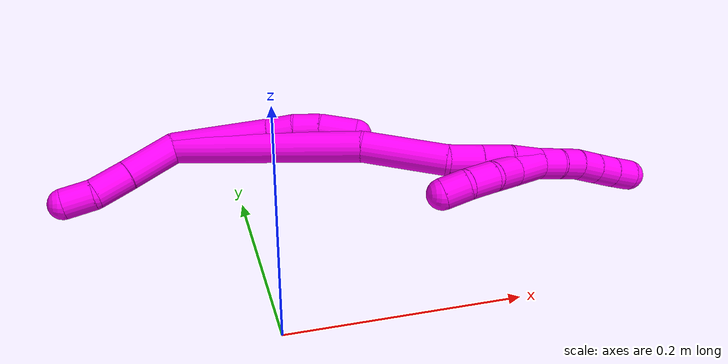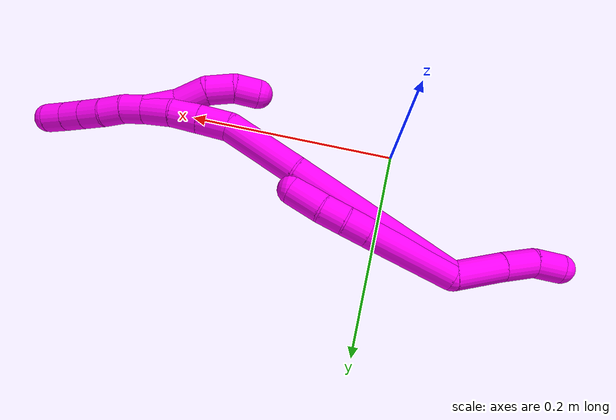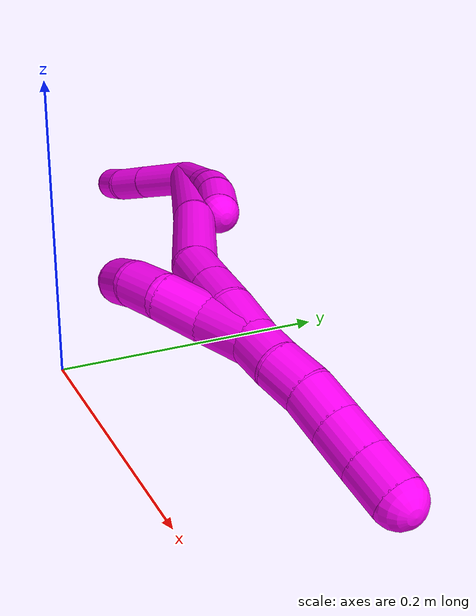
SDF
<sdf version="1.7">
 <world name="default">
  <model name="photoneo_s_sensor">
   <static>1</static>
   <pose>0 0 2 1.57079 1.57079 3.14159</pose>
   <link name="link">
    <inertial><mass>0.1</mass></inertial>
    <sensor name="sensor" type="depth">
     <update_rate>30</update_rate>
     <camera>
      <horizontal_fov>1.22</horizontal_fov>
      <image><width>1920</width><height>1200</height><format>B8G8R8</format></image>
      <clip><near>0.1</near><far>4</far></clip>
      <depth_camera><output>points</output></depth_camera>
     </camera>
     <plugin name="camera_plugin" filename="libgazebo_ros_depth_camera.so">
      <baseline>0.2</baseline>
      <alwaysOn>1</alwaysOn>
      <updateRate>0.0</updateRate>
      <cameraName>camera_ir</cameraName>
      <imageTopicName>/camera/color/image_raw</imageTopicName>
      <cameraInfoTopicName>/camera/color/camera_info</cameraInfoTopicName>
      <depthImageTopicName>/camera/depth/image_raw</depthImageTopicName>
      <depthImageCameraInfoTopicName>/camera/depth/camera_info</depthImageCameraInfoTopicName>
      <pointCloudTopicName>/camera/depth/points</pointCloudTopicName>
      <frameName>fr_optical</frameName>
      <pointCloudCutoff>0.1</pointCloudCutoff>
      <pointCloudCutoffMax>2.0</pointCloudCutoffMax>
      <distortionK1>0</distortionK1>
      <distortionK2>0</distortionK2>
      <distortionK3>0</distortionK3>
      <distortionT1>0</distortionT1>
      <distortionT2>0</distortionT2>
      <CxPrime>0</CxPrime>
      <Cx>0</Cx>
      <Cy>0</Cy>
      <focalLength>0</focalLength>
      <hackBaseline>0</hackBaseline>
     </plugin>
    </sensor>
   </link>
  </model>
  <model name="bin">
   <static>1</static>
   <link name="bottom">
    <collision name="collision-bottom">
     <pose>0 0 -0.01 0 -0 0</pose>
     <geometry><box><size>0.8 0.6 0.02</size></box></geometry>
     <surface>
      <friction><ode><mu>100</mu><mu2>100</mu2></ode></friction>
      <contact><collide_bitmask>65535</collide_bitmask></contact>
     </surface>
    </collision>
   </link>
   <link name="west_wall">
    <collision name="collision-west_wall">
     <pose>-0.41 0 0.1 0 -0 0</pose>
     <geometry><box><size>0.02 0.6 0.2</size></box></geometry>
     <surface>
      <friction><ode><mu>100</mu><mu2>100</mu2></ode></friction>
      <contact><collide_bitmask>65535</collide_bitmask></contact>
     </surface>
    </collision>
   </link>
   <link name="east_wall">
    <collision name="collision-east_wall">
     <pose>0.41 0 0.1 0 -0 0</pose>
     <geometry><box><size>0.02 0.6 0.2</size></box></geometry>
     <surface>
      <friction><ode><mu>100</mu><mu2>100</mu2></ode></friction>
      <contact><collide_bitmask>65535</collide_bitmask></contact>
     </surface>
    </collision>
   </link>
   <link name="south_wall">
    <collision name="collision-south_wall">
     <pose>0 -0.31 0.1 0 -0 0</pose>
     <geometry><box><size>0.8 0.02 0.2</size></box></geometry>
     <surface>
      <friction><ode><mu>100</mu><mu2>100</mu2></ode></friction>
      <contact><collide_bitmask>65535</collide_bitmask></contact>
     </surface>
    </collision>
   </link>
   <link name="north_wall">
    <collision name="collision-north_wall">
     <pose>0 0.31 0.1 0 -0 0</pose>
     <geometry><box><size>0.8 0.02 0.2</size></box></geometry>
     <surface>
      <friction><ode><mu>100</mu><mu2>100</mu2></ode></friction>
      <contact><collide_bitmask>65535</collide_bitmask></contact>
     </surface>
    </collision>
   </link>
  </model>
  <model name="10">
   <static>0</static>
   <link name="10">
    <collision name="collision-cylinder-e_1_2_8">
     <pose>0.009309 0.007167 0.03751 -0.188795 0.239108 -0.022746</pose>
     <geometry><cylinder><radius>0.0125</radius><length>0.078614</length></cylinder></geometry>
     <surface>
      <friction><ode><mu>1.16</mu><mu2>1.16</mu2><slip1>0</slip1><slip2>0</slip2></ode></friction>
      <contact><ode><kp>1e+06</kp><kd>1</kd><max_vel>0</max_vel><min_depth>0.001</min_depth></ode></contact>
     </surface>
    </collision>
    <visual name="visual-cylinder-e_1_2_8">
     <pose>0.009309 0.007167 0.03751 -0.188795 0.239108 -0.022746</pose>
     <geometry><cylinder><radius>0.0125</radius><length>0.078614</length></cylinder></geometry>
     <material><ambient>1 0 0.964706 1</ambient></material>
    </visual>
    <collision name="collision-cylinder-e_2_8_9">
     <pose>0.02139 0.016229 0.084961 -0.188403 0.267305 -0.025405</pose>
     <geometry><cylinder><radius>0.0125</radius><length>0.020984</length></cylinder></geometry>
     <surface>
      <friction><ode><mu>1.16</mu><mu2>1.16</mu2><slip1>0</slip1><slip2>0</slip2></ode></friction>
      <contact><ode><kp>1e+06</kp><kd>1</kd><max_vel>0</max_vel><min_depth>0.001</min_depth></ode></contact>
     </surface>
    </collision>
    <visual name="visual-cylinder-e_2_8_9">
     <pose>0.02139 0.016229 0.084961 -0.188403 0.267305 -0.025405</pose>
     <geometry><cylinder><radius>0.0125</radius><length>0.020984</length></cylinder></geometry>
     <material><ambient>1 0 0.964706 1</ambient></material>
    </visual>
    <collision name="collision-cylinder-e_3_9_10">
     <pose>0.025348 0.020539 0.104983 -0.235064 0.114018 -0.013477</pose>
     <geometry><cylinder><radius>0.0125</radius><length>0.02087</length></cylinder></geometry>
     <surface>
      <friction><ode><mu>1.16</mu><mu2>1.16</mu2><slip1>0</slip1><slip2>0</slip2></ode></friction>
      <contact><ode><kp>1e+06</kp><kd>1</kd><max_vel>0</max_vel><min_depth>0.001</min_depth></ode></contact>
     </surface>
    </collision>
    <visual name="visual-cylinder-e_3_9_10">
     <pose>0.025348 0.020539 0.104983 -0.235064 0.114018 -0.013477</pose>
     <geometry><cylinder><radius>0.0125</radius><length>0.02087</length></cylinder></geometry>
     <material><ambient>1 0 0.964706 1</ambient></material>
    </visual>
    <collision name="collision-cylinder-e_4_10_6">
     <pose>0.02632 0.027899 0.128977 -0.341521 -0.014602 0.002518</pose>
     <geometry><cylinder><radius>0.0125</radius><length>0.029533</length></cylinder></geometry>
     <surface>
      <friction><ode><mu>1.16</mu><mu2>1.16</mu2><slip1>0</slip1><slip2>0</slip2></ode></friction>
      <contact><ode><kp>1e+06</kp><kd>1</kd><max_vel>0</max_vel><min_depth>0.001</min_depth></ode></contact>
     </surface>
    </collision>
    <visual name="visual-cylinder-e_4_10_6">
     <pose>0.02632 0.027899 0.128977 -0.341521 -0.014602 0.002518</pose>
     <geometry><cylinder><radius>0.0125</radius><length>0.029533</length></cylinder></geometry>
     <material><ambient>1 0 0.964706 1</ambient></material>
    </visual>
    <collision name="collision-cylinder-e_1_2_11">
     <pose>-0.005722 0.010088 -0.019314 -2.66026 -0.256827 0.968665</pose>
     <geometry><cylinder><radius>0.0125</radius><length>0.045057</length></cylinder></geometry>
     <surface>
      <friction><ode><mu>1.16</mu><mu2>1.16</mu2><slip1>0</slip1><slip2>0</slip2></ode></friction>
      <contact><ode><kp>1e+06</kp><kd>1</kd><max_vel>0</max_vel><min_depth>0.001</min_depth></ode></contact>
     </surface>
    </collision>
    <visual name="visual-cylinder-e_1_2_11">
     <pose>-0.005722 0.010088 -0.019314 -2.66026 -0.256827 0.968665</pose>
     <geometry><cylinder><radius>0.0125</radius><length>0.045057</length></cylinder></geometry>
     <material><ambient>1 0 0.964706 1</ambient></material>
    </visual>
    <collision name="collision-cylinder-e_2_11_12">
     <pose>-0.015454 0.02635 -0.051792 -2.70302 -0.269034 1.09144</pose>
     <geometry><cylinder><radius>0.0125</radius><length>0.030166</length></cylinder></geometry>
     <surface>
      <friction><ode><mu>1.16</mu><mu2>1.16</mu2><slip1>0</slip1><slip2>0</slip2></ode></friction>
      <contact><ode><kp>1e+06</kp><kd>1</kd><max_vel>0</max_vel><min_depth>0.001</min_depth></ode></contact>
     </surface>
    </collision>
    <visual name="visual-cylinder-e_2_11_12">
     <pose>-0.015454 0.02635 -0.051792 -2.70302 -0.269034 1.09144</pose>
     <geometry><cylinder><radius>0.0125</radius><length>0.030166</length></cylinder></geometry>
     <material><ambient>1 0 0.964706 1</ambient></material>
    </visual>
    <collision name="collision-cylinder-e_3_12_5">
     <pose>-0.022587 0.033571 -0.076898 -3.0542 -0.254924 2.484</pose>
     <geometry><cylinder><radius>0.0125</radius><length>0.024777</length></cylinder></geometry>
     <surface>
      <friction><ode><mu>1.16</mu><mu2>1.16</mu2><slip1>0</slip1><slip2>0</slip2></ode></friction>
      <contact><ode><kp>1e+06</kp><kd>1</kd><max_vel>0</max_vel><min_depth>0.001</min_depth></ode></contact>
     </surface>
    </collision>
    <visual name="visual-cylinder-e_3_12_5">
     <pose>-0.022587 0.033571 -0.076898 -3.0542 -0.254924 2.484</pose>
     <geometry><cylinder><radius>0.0125</radius><length>0.024777</length></cylinder></geometry>
     <material><ambient>1 0 0.964706 1</ambient></material>
    </visual>
    <collision name="collision-cylinder-e_1_2_13">
     <pose>0.0127 0.024924 0.072179 -0.332484 0.16481 -0.027715</pose>
     <geometry><cylinder><radius>0.0125</radius><length>0.15482</length></cylinder></geometry>
     <surface>
      <friction><ode><mu>1.16</mu><mu2>1.16</mu2><slip1>0</slip1><slip2>0</slip2></ode></friction>
      <contact><ode><kp>1e+06</kp><kd>1</kd><max_vel>0</max_vel><min_depth>0.001</min_depth></ode></contact>
     </surface>
    </collision>
    <visual name="visual-cylinder-e_1_2_13">
     <pose>0.0127 0.024924 0.072179 -0.332484 0.16481 -0.027715</pose>
     <geometry><cylinder><radius>0.0125</radius><length>0.15482</length></cylinder></geometry>
     <material><ambient>1 0 0.964706 1</ambient></material>
    </visual>
    <collision name="collision-cylinder-e_2_13_14">
     <pose>0.025282 0.062264 0.176024 -0.373698 -0.003498 0.000661</pose>
     <geometry><cylinder><radius>0.0125</radius><length>0.068027</length></cylinder></geometry>
     <surface>
      <friction><ode><mu>1.16</mu><mu2>1.16</mu2><slip1>0</slip1><slip2>0</slip2></ode></friction>
      <contact><ode><kp>1e+06</kp><kd>1</kd><max_vel>0</max_vel><min_depth>0.001</min_depth></ode></contact>
     </surface>
    </collision>
    <visual name="visual-cylinder-e_2_13_14">
     <pose>0.025282 0.062264 0.176024 -0.373698 -0.003498 0.000661</pose>
     <geometry><cylinder><radius>0.0125</radius><length>0.068027</length></cylinder></geometry>
     <material><ambient>1 0 0.964706 1</ambient></material>
    </visual>
    <collision name="collision-cylinder-e_3_14_15">
     <pose>0.02483 0.075324 0.221393 -0.046921 -0.024267 0.000569</pose>
     <geometry><cylinder><radius>0.0125</radius><length>0.027445</length></cylinder></geometry>
     <surface>
      <friction><ode><mu>1.16</mu><mu2>1.16</mu2><slip1>0</slip1><slip2>0</slip2></ode></friction>
      <contact><ode><kp>1e+06</kp><kd>1</kd><max_vel>0</max_vel><min_depth>0.001</min_depth></ode></contact>
     </surface>
    </collision>
    <visual name="visual-cylinder-e_3_14_15">
     <pose>0.02483 0.075324 0.221393 -0.046921 -0.024267 0.000569</pose>
     <geometry><cylinder><radius>0.0125</radius><length>0.027445</length></cylinder></geometry>
     <material><ambient>1 0 0.964706 1</ambient></material>
    </visual>
    <collision name="collision-cylinder-e_4_15_16">
     <pose>0.024107 0.076423 0.247319 -0.03721 -0.031832 0.000592</pose>
     <geometry><cylinder><radius>0.0125</radius><length>0.024474</length></cylinder></geometry>
     <surface>
      <friction><ode><mu>1.16</mu><mu2>1.16</mu2><slip1>0</slip1><slip2>0</slip2></ode></friction>
      <contact><ode><kp>1e+06</kp><kd>1</kd><max_vel>0</max_vel><min_depth>0.001</min_depth></ode></contact>
     </surface>
    </collision>
    <visual name="visual-cylinder-e_4_15_16">
     <pose>0.024107 0.076423 0.247319 -0.03721 -0.031832 0.000592</pose>
     <geometry><cylinder><radius>0.0125</radius><length>0.024474</length></cylinder></geometry>
     <material><ambient>1 0 0.964706 1</ambient></material>
    </visual>
    <collision name="collision-cylinder-e_5_16_1">
     <pose>0.021242 0.076488 0.271907 0.031516 -0.197475 -0.003122</pose>
     <geometry><cylinder><radius>0.0125</radius><length>0.025234</length></cylinder></geometry>
     <surface>
      <friction><ode><mu>1.16</mu><mu2>1.16</mu2><slip1>0</slip1><slip2>0</slip2></ode></friction>
      <contact><ode><kp>1e+06</kp><kd>1</kd><max_vel>0</max_vel><min_depth>0.001</min_depth></ode></contact>
     </surface>
    </collision>
    <visual name="visual-cylinder-e_5_16_1">
     <pose>0.021242 0.076488 0.271907 0.031516 -0.197475 -0.003122</pose>
     <geometry><cylinder><radius>0.0125</radius><length>0.025234</length></cylinder></geometry>
     <material><ambient>1 0 0.964706 1</ambient></material>
    </visual>
    <collision name="collision-cylinder-e_1_1_17">
     <pose>0.017242 0.074839 0.294075 0.127753 -0.153082 -0.009811</pose>
     <geometry><cylinder><radius>0.0125</radius><length>0.02</length></cylinder></geometry>
     <surface>
      <friction><ode><mu>1.16</mu><mu2>1.16</mu2><slip1>0</slip1><slip2>0</slip2></ode></friction>
      <contact><ode><kp>1e+06</kp><kd>1</kd><max_vel>0</max_vel><min_depth>0.001</min_depth></ode></contact>
     </surface>
    </collision>
    <visual name="visual-cylinder-e_1_1_17">
     <pose>0.017242 0.074839 0.294075 0.127753 -0.153082 -0.009811</pose>
     <geometry><cylinder><radius>0.0125</radius><length>0.02</length></cylinder></geometry>
     <material><ambient>1 0 0.964706 1</ambient></material>
    </visual>
    <collision name="collision-cylinder-e_2_17_18">
     <pose>0.013301 0.07086 0.313192 0.28413 -0.244012 -0.035071</pose>
     <geometry><cylinder><radius>0.0125</radius><length>0.02</length></cylinder></geometry>
     <surface>
      <friction><ode><mu>1.16</mu><mu2>1.16</mu2><slip1>0</slip1><slip2>0</slip2></ode></friction>
      <contact><ode><kp>1e+06</kp><kd>1</kd><max_vel>0</max_vel><min_depth>0.001</min_depth></ode></contact>
     </surface>
    </collision>
    <visual name="visual-cylinder-e_2_17_18">
     <pose>0.013301 0.07086 0.313192 0.28413 -0.244012 -0.035071</pose>
     <geometry><cylinder><radius>0.0125</radius><length>0.02</length></cylinder></geometry>
     <material><ambient>1 0 0.964706 1</ambient></material>
    </visual>
    <collision name="collision-cylinder-e_3_18_19">
     <pose>0.007412 0.066582 0.331754 0.166896 -0.35471 -0.029982</pose>
     <geometry><cylinder><radius>0.0125</radius><length>0.02</length></cylinder></geometry>
     <surface>
      <friction><ode><mu>1.16</mu><mu2>1.16</mu2><slip1>0</slip1><slip2>0</slip2></ode></friction>
      <contact><ode><kp>1e+06</kp><kd>1</kd><max_vel>0</max_vel><min_depth>0.001</min_depth></ode></contact>
     </surface>
    </collision>
    <visual name="visual-cylinder-e_3_18_19">
     <pose>0.007412 0.066582 0.331754 0.166896 -0.35471 -0.029982</pose>
     <geometry><cylinder><radius>0.0125</radius><length>0.02</length></cylinder></geometry>
     <material><ambient>1 0 0.964706 1</ambient></material>
    </visual>
    <collision name="collision-cylinder-e_4_19_20">
     <pose>0.000513 0.063465 0.350266 0.166714 -0.349628 -0.029511</pose>
     <geometry><cylinder><radius>0.0125</radius><length>0.02</length></cylinder></geometry>
     <surface>
      <friction><ode><mu>1.16</mu><mu2>1.16</mu2><slip1>0</slip1><slip2>0</slip2></ode></friction>
      <contact><ode><kp>1e+06</kp><kd>1</kd><max_vel>0</max_vel><min_depth>0.001</min_depth></ode></contact>
     </surface>
    </collision>
    <visual name="visual-cylinder-e_4_19_20">
     <pose>0.000513 0.063465 0.350266 0.166714 -0.349628 -0.029511</pose>
     <geometry><cylinder><radius>0.0125</radius><length>0.02</length></cylinder></geometry>
     <material><ambient>1 0 0.964706 1</ambient></material>
    </visual>
    <collision name="collision-cylinder-e_5_20_4">
     <pose>-0.006052 0.060381 0.368902 0.16132 -0.319436 -0.026042</pose>
     <geometry><cylinder><radius>0.0125</radius><length>0.02</length></cylinder></geometry>
     <surface>
      <friction><ode><mu>1.16</mu><mu2>1.16</mu2><slip1>0</slip1><slip2>0</slip2></ode></friction>
      <contact><ode><kp>1e+06</kp><kd>1</kd><max_vel>0</max_vel><min_depth>0.001</min_depth></ode></contact>
     </surface>
    </collision>
    <visual name="visual-cylinder-e_5_20_4">
     <pose>-0.006052 0.060381 0.368902 0.16132 -0.319436 -0.026042</pose>
     <geometry><cylinder><radius>0.0125</radius><length>0.02</length></cylinder></geometry>
     <material><ambient>1 0 0.964706 1</ambient></material>
    </visual>
    <collision name="collision-cylinder-e_1_1_21">
     <pose>0.019558 0.081801 0.271167 -2.73116 0.055314 -0.264262</pose>
     <geometry><cylinder><radius>0.0125</radius><length>0.02863</length></cylinder></geometry>
     <surface>
      <friction><ode><mu>1.16</mu><mu2>1.16</mu2><slip1>0</slip1><slip2>0</slip2></ode></friction>
      <contact><ode><kp>1e+06</kp><kd>1</kd><max_vel>0</max_vel><min_depth>0.001</min_depth></ode></contact>
     </surface>
    </collision>
    <visual name="visual-cylinder-e_1_1_21">
     <pose>0.019558 0.081801 0.271167 -2.73116 0.055314 -0.264262</pose>
     <geometry><cylinder><radius>0.0125</radius><length>0.02863</length></cylinder></geometry>
     <material><ambient>1 0 0.964706 1</ambient></material>
    </visual>
    <collision name="collision-cylinder-e_2_21_22">
     <pose>0.023235 0.094797 0.247022 -2.55775 0.214718 -0.688701</pose>
     <geometry><cylinder><radius>0.0125</radius><length>0.027083</length></cylinder></geometry>
     <surface>
      <friction><ode><mu>1.16</mu><mu2>1.16</mu2><slip1>0</slip1><slip2>0</slip2></ode></friction>
      <contact><ode><kp>1e+06</kp><kd>1</kd><max_vel>0</max_vel><min_depth>0.001</min_depth></ode></contact>
     </surface>
    </collision>
    <visual name="visual-cylinder-e_2_21_22">
     <pose>0.023235 0.094797 0.247022 -2.55775 0.214718 -0.688701</pose>
     <geometry><cylinder><radius>0.0125</radius><length>0.027083</length></cylinder></geometry>
     <material><ambient>1 0 0.964706 1</ambient></material>
    </visual>
    <collision name="collision-cylinder-e_3_22_23">
     <pose>0.025791 0.10594 0.22482 -2.80949 -0.027913 0.166177</pose>
     <geometry><cylinder><radius>0.0125</radius><length>0.023624</length></cylinder></geometry>
     <surface>
      <friction><ode><mu>1.16</mu><mu2>1.16</mu2><slip1>0</slip1><slip2>0</slip2></ode></friction>
      <contact><ode><kp>1e+06</kp><kd>1</kd><max_vel>0</max_vel><min_depth>0.001</min_depth></ode></contact>
     </surface>
    </collision>
    <visual name="visual-cylinder-e_3_22_23">
     <pose>0.025791 0.10594 0.22482 -2.80949 -0.027913 0.166177</pose>
     <geometry><cylinder><radius>0.0125</radius><length>0.023624</length></cylinder></geometry>
     <material><ambient>1 0 0.964706 1</ambient></material>
    </visual>
    <collision name="collision-cylinder-e_4_23_3">
     <pose>0.022391 0.110901 0.203856 -3.0287 -0.301707 2.42977</pose>
     <geometry><cylinder><radius>0.0125</radius><length>0.020663</length></cylinder></geometry>
     <surface>
      <friction><ode><mu>1.16</mu><mu2>1.16</mu2><slip1>0</slip1><slip2>0</slip2></ode></friction>
      <contact><ode><kp>1e+06</kp><kd>1</kd><max_vel>0</max_vel><min_depth>0.001</min_depth></ode></contact>
     </surface>
    </collision>
    <visual name="visual-cylinder-e_4_23_3">
     <pose>0.022391 0.110901 0.203856 -3.0287 -0.301707 2.42977</pose>
     <geometry><cylinder><radius>0.0125</radius><length>0.020663</length></cylinder></geometry>
     <material><ambient>1 0 0.964706 1</ambient></material>
    </visual>
    <collision name="collision-sphere-3">
     <pose>0.019321 0.112013 0.194054 0 -0 0</pose>
     <geometry><sphere><radius>0.0125</radius></sphere></geometry>
     <surface>
      <friction><ode><mu>1.16</mu><mu2>1.16</mu2><slip1>0</slip1><slip2>0</slip2></ode></friction>
      <contact><ode><kp>1e+06</kp><kd>1</kd><max_vel>0</max_vel><min_depth>0.001</min_depth></ode></contact>
     </surface>
    </collision>
    <visual name="visual-sphere-3">
     <pose>0.019321 0.112013 0.194054 0 -0 0</pose>
     <geometry><sphere><radius>0.0125</radius></sphere></geometry>
     <material><ambient>1 0 0.964706 1</ambient></material>
    </visual>
    <collision name="collision-sphere-23">
     <pose>0.025461 0.10979 0.213658 0 -0 0</pose>
     <geometry><sphere><radius>0.0125</radius></sphere></geometry>
     <surface>
      <friction><ode><mu>1.16</mu><mu2>1.16</mu2><slip1>0</slip1><slip2>0</slip2></ode></friction>
      <contact><ode><kp>1e+06</kp><kd>1</kd><max_vel>0</max_vel><min_depth>0.001</min_depth></ode></contact>
     </surface>
    </collision>
    <visual name="visual-sphere-23">
     <pose>0.025461 0.10979 0.213658 0 -0 0</pose>
     <geometry><sphere><radius>0.0125</radius></sphere></geometry>
     <material><ambient>1 0 0.964706 1</ambient></material>
    </visual>
    <collision name="collision-sphere-22">
     <pose>0.02612 0.102091 0.235983 0 -0 0</pose>
     <geometry><sphere><radius>0.0125</radius></sphere></geometry>
     <surface>
      <friction><ode><mu>1.16</mu><mu2>1.16</mu2><slip1>0</slip1><slip2>0</slip2></ode></friction>
      <contact><ode><kp>1e+06</kp><kd>1</kd><max_vel>0</max_vel><min_depth>0.001</min_depth></ode></contact>
     </surface>
    </collision>
    <visual name="visual-sphere-22">
     <pose>0.02612 0.102091 0.235983 0 -0 0</pose>
     <geometry><sphere><radius>0.0125</radius></sphere></geometry>
     <material><ambient>1 0 0.964706 1</ambient></material>
    </visual>
    <collision name="collision-sphere-21">
     <pose>0.02035 0.087504 0.258061 0 -0 0</pose>
     <geometry><sphere><radius>0.0125</radius></sphere></geometry>
     <surface>
      <friction><ode><mu>1.16</mu><mu2>1.16</mu2><slip1>0</slip1><slip2>0</slip2></ode></friction>
      <contact><ode><kp>1e+06</kp><kd>1</kd><max_vel>0</max_vel><min_depth>0.001</min_depth></ode></contact>
     </surface>
    </collision>
    <visual name="visual-sphere-21">
     <pose>0.02035 0.087504 0.258061 0 -0 0</pose>
     <geometry><sphere><radius>0.0125</radius></sphere></geometry>
     <material><ambient>1 0 0.964706 1</ambient></material>
    </visual>
    <collision name="collision-sphere-4">
     <pose>-0.009193 0.058856 0.378273 0 -0 0</pose>
     <geometry><sphere><radius>0.0125</radius></sphere></geometry>
     <surface>
      <friction><ode><mu>1.16</mu><mu2>1.16</mu2><slip1>0</slip1><slip2>0</slip2></ode></friction>
      <contact><ode><kp>1e+06</kp><kd>1</kd><max_vel>0</max_vel><min_depth>0.001</min_depth></ode></contact>
     </surface>
    </collision>
    <visual name="visual-sphere-4">
     <pose>-0.009193 0.058856 0.378273 0 -0 0</pose>
     <geometry><sphere><radius>0.0125</radius></sphere></geometry>
     <material><ambient>1 0 0.964706 1</ambient></material>
    </visual>
    <collision name="collision-sphere-20">
     <pose>-0.002912 0.061906 0.359531 0 -0 0</pose>
     <geometry><sphere><radius>0.0125</radius></sphere></geometry>
     <surface>
      <friction><ode><mu>1.16</mu><mu2>1.16</mu2><slip1>0</slip1><slip2>0</slip2></ode></friction>
      <contact><ode><kp>1e+06</kp><kd>1</kd><max_vel>0</max_vel><min_depth>0.001</min_depth></ode></contact>
     </surface>
    </collision>
    <visual name="visual-sphere-20">
     <pose>-0.002912 0.061906 0.359531 0 -0 0</pose>
     <geometry><sphere><radius>0.0125</radius></sphere></geometry>
     <material><ambient>1 0 0.964706 1</ambient></material>
    </visual>
    <collision name="collision-sphere-11">
     <pose>-0.011445 0.020175 -0.038627 0 -0 0</pose>
     <geometry><sphere><radius>0.0125</radius></sphere></geometry>
     <surface>
      <friction><ode><mu>1.16</mu><mu2>1.16</mu2><slip1>0</slip1><slip2>0</slip2></ode></friction>
      <contact><ode><kp>1e+06</kp><kd>1</kd><max_vel>0</max_vel><min_depth>0.001</min_depth></ode></contact>
     </surface>
    </collision>
    <visual name="visual-sphere-11">
     <pose>-0.011445 0.020175 -0.038627 0 -0 0</pose>
     <geometry><sphere><radius>0.0125</radius></sphere></geometry>
     <material><ambient>1 0 0.964706 1</ambient></material>
    </visual>
    <collision name="collision-sphere-6">
     <pose>0.026104 0.032844 0.142889 0 -0 0</pose>
     <geometry><sphere><radius>0.0125</radius></sphere></geometry>
     <surface>
      <friction><ode><mu>1.16</mu><mu2>1.16</mu2><slip1>0</slip1><slip2>0</slip2></ode></friction>
      <contact><ode><kp>1e+06</kp><kd>1</kd><max_vel>0</max_vel><min_depth>0.001</min_depth></ode></contact>
     </surface>
    </collision>
    <visual name="visual-sphere-6">
     <pose>0.026104 0.032844 0.142889 0 -0 0</pose>
     <geometry><sphere><radius>0.0125</radius></sphere></geometry>
     <material><ambient>1 0 0.964706 1</ambient></material>
    </visual>
    <collision name="collision-sphere-10">
     <pose>0.026535 0.022954 0.115065 0 -0 0</pose>
     <geometry><sphere><radius>0.0125</radius></sphere></geometry>
     <surface>
      <friction><ode><mu>1.16</mu><mu2>1.16</mu2><slip1>0</slip1><slip2>0</slip2></ode></friction>
      <contact><ode><kp>1e+06</kp><kd>1</kd><max_vel>0</max_vel><min_depth>0.001</min_depth></ode></contact>
     </surface>
    </collision>
    <visual name="visual-sphere-10">
     <pose>0.026535 0.022954 0.115065 0 -0 0</pose>
     <geometry><sphere><radius>0.0125</radius></sphere></geometry>
     <material><ambient>1 0 0.964706 1</ambient></material>
    </visual>
    <collision name="collision-sphere-9">
     <pose>0.024161 0.018125 0.094901 0 -0 0</pose>
     <geometry><sphere><radius>0.0125</radius></sphere></geometry>
     <surface>
      <friction><ode><mu>1.16</mu><mu2>1.16</mu2><slip1>0</slip1><slip2>0</slip2></ode></friction>
      <contact><ode><kp>1e+06</kp><kd>1</kd><max_vel>0</max_vel><min_depth>0.001</min_depth></ode></contact>
     </surface>
    </collision>
    <visual name="visual-sphere-9">
     <pose>0.024161 0.018125 0.094901 0 -0 0</pose>
     <geometry><sphere><radius>0.0125</radius></sphere></geometry>
     <material><ambient>1 0 0.964706 1</ambient></material>
    </visual>
    <collision name="collision-sphere-2">
     <geometry><sphere><radius>0.0125</radius></sphere></geometry>
     <surface>
      <friction><ode><mu>1.16</mu><mu2>1.16</mu2><slip1>0</slip1><slip2>0</slip2></ode></friction>
      <contact><ode><kp>1e+06</kp><kd>1</kd><max_vel>0</max_vel><min_depth>0.001</min_depth></ode></contact>
     </surface>
    </collision>
    <visual name="visual-sphere-2">
     <geometry><sphere><radius>0.0125</radius></sphere></geometry>
     <material><ambient>1 0 0.964706 1</ambient></material>
    </visual>
    <collision name="collision-sphere-19">
     <pose>0.003939 0.065024 0.341001 0 -0 0</pose>
     <geometry><sphere><radius>0.0125</radius></sphere></geometry>
     <surface>
      <friction><ode><mu>1.16</mu><mu2>1.16</mu2><slip1>0</slip1><slip2>0</slip2></ode></friction>
      <contact><ode><kp>1e+06</kp><kd>1</kd><max_vel>0</max_vel><min_depth>0.001</min_depth></ode></contact>
     </surface>
    </collision>
    <visual name="visual-sphere-19">
     <pose>0.003939 0.065024 0.341001 0 -0 0</pose>
     <geometry><sphere><radius>0.0125</radius></sphere></geometry>
     <material><ambient>1 0 0.964706 1</ambient></material>
    </visual>
    <collision name="collision-sphere-8">
     <pose>0.018619 0.014334 0.07502 0 -0 0</pose>
     <geometry><sphere><radius>0.0125</radius></sphere></geometry>
     <surface>
      <friction><ode><mu>1.16</mu><mu2>1.16</mu2><slip1>0</slip1><slip2>0</slip2></ode></friction>
      <contact><ode><kp>1e+06</kp><kd>1</kd><max_vel>0</max_vel><min_depth>0.001</min_depth></ode></contact>
     </surface>
    </collision>
    <visual name="visual-sphere-8">
     <pose>0.018619 0.014334 0.07502 0 -0 0</pose>
     <geometry><sphere><radius>0.0125</radius></sphere></geometry>
     <material><ambient>1 0 0.964706 1</ambient></material>
    </visual>
    <collision name="collision-sphere-12">
     <pose>-0.019463 0.032524 -0.064956 0 -0 0</pose>
     <geometry><sphere><radius>0.0125</radius></sphere></geometry>
     <surface>
      <friction><ode><mu>1.16</mu><mu2>1.16</mu2><slip1>0</slip1><slip2>0</slip2></ode></friction>
      <contact><ode><kp>1e+06</kp><kd>1</kd><max_vel>0</max_vel><min_depth>0.001</min_depth></ode></contact>
     </surface>
    </collision>
    <visual name="visual-sphere-12">
     <pose>-0.019463 0.032524 -0.064956 0 -0 0</pose>
     <geometry><sphere><radius>0.0125</radius></sphere></geometry>
     <material><ambient>1 0 0.964706 1</ambient></material>
    </visual>
    <collision name="collision-sphere-5">
     <pose>-0.025711 0.034617 -0.088841 0 -0 0</pose>
     <geometry><sphere><radius>0.0125</radius></sphere></geometry>
     <surface>
      <friction><ode><mu>1.16</mu><mu2>1.16</mu2><slip1>0</slip1><slip2>0</slip2></ode></friction>
      <contact><ode><kp>1e+06</kp><kd>1</kd><max_vel>0</max_vel><min_depth>0.001</min_depth></ode></contact>
     </surface>
    </collision>
    <visual name="visual-sphere-5">
     <pose>-0.025711 0.034617 -0.088841 0 -0 0</pose>
     <geometry><sphere><radius>0.0125</radius></sphere></geometry>
     <material><ambient>1 0 0.964706 1</ambient></material>
    </visual>
    <collision name="collision-sphere-13">
     <pose>0.025401 0.049847 0.144358 0 -0 0</pose>
     <geometry><sphere><radius>0.0125</radius></sphere></geometry>
     <surface>
      <friction><ode><mu>1.16</mu><mu2>1.16</mu2><slip1>0</slip1><slip2>0</slip2></ode></friction>
      <contact><ode><kp>1e+06</kp><kd>1</kd><max_vel>0</max_vel><min_depth>0.001</min_depth></ode></contact>
     </surface>
    </collision>
    <visual name="visual-sphere-13">
     <pose>0.025401 0.049847 0.144358 0 -0 0</pose>
     <geometry><sphere><radius>0.0125</radius></sphere></geometry>
     <material><ambient>1 0 0.964706 1</ambient></material>
    </visual>
    <collision name="collision-sphere-14">
     <pose>0.025163 0.074681 0.207689 0 -0 0</pose>
     <geometry><sphere><radius>0.0125</radius></sphere></geometry>
     <surface>
      <friction><ode><mu>1.16</mu><mu2>1.16</mu2><slip1>0</slip1><slip2>0</slip2></ode></friction>
      <contact><ode><kp>1e+06</kp><kd>1</kd><max_vel>0</max_vel><min_depth>0.001</min_depth></ode></contact>
     </surface>
    </collision>
    <visual name="visual-sphere-14">
     <pose>0.025163 0.074681 0.207689 0 -0 0</pose>
     <geometry><sphere><radius>0.0125</radius></sphere></geometry>
     <material><ambient>1 0 0.964706 1</ambient></material>
    </visual>
    <collision name="collision-sphere-15">
     <pose>0.024497 0.075968 0.235096 0 -0 0</pose>
     <geometry><sphere><radius>0.0125</radius></sphere></geometry>
     <surface>
      <friction><ode><mu>1.16</mu><mu2>1.16</mu2><slip1>0</slip1><slip2>0</slip2></ode></friction>
      <contact><ode><kp>1e+06</kp><kd>1</kd><max_vel>0</max_vel><min_depth>0.001</min_depth></ode></contact>
     </surface>
    </collision>
    <visual name="visual-sphere-15">
     <pose>0.024497 0.075968 0.235096 0 -0 0</pose>
     <geometry><sphere><radius>0.0125</radius></sphere></geometry>
     <material><ambient>1 0 0.964706 1</ambient></material>
    </visual>
    <collision name="collision-sphere-16">
     <pose>0.023718 0.076878 0.259541 0 -0 0</pose>
     <geometry><sphere><radius>0.0125</radius></sphere></geometry>
     <surface>
      <friction><ode><mu>1.16</mu><mu2>1.16</mu2><slip1>0</slip1><slip2>0</slip2></ode></friction>
      <contact><ode><kp>1e+06</kp><kd>1</kd><max_vel>0</max_vel><min_depth>0.001</min_depth></ode></contact>
     </surface>
    </collision>
    <visual name="visual-sphere-16">
     <pose>0.023718 0.076878 0.259541 0 -0 0</pose>
     <geometry><sphere><radius>0.0125</radius></sphere></geometry>
     <material><ambient>1 0 0.964706 1</ambient></material>
    </visual>
    <collision name="collision-sphere-1">
     <pose>0.018767 0.076098 0.284273 0 -0 0</pose>
     <geometry><sphere><radius>0.0125</radius></sphere></geometry>
     <surface>
      <friction><ode><mu>1.16</mu><mu2>1.16</mu2><slip1>0</slip1><slip2>0</slip2></ode></friction>
      <contact><ode><kp>1e+06</kp><kd>1</kd><max_vel>0</max_vel><min_depth>0.001</min_depth></ode></contact>
     </surface>
    </collision>
    <visual name="visual-sphere-1">
     <pose>0.018767 0.076098 0.284273 0 -0 0</pose>
     <geometry><sphere><radius>0.0125</radius></sphere></geometry>
     <material><ambient>1 0 0.964706 1</ambient></material>
    </visual>
    <collision name="collision-sphere-18">
     <pose>0.010885 0.068139 0.322507 0 -0 0</pose>
     <geometry><sphere><radius>0.0125</radius></sphere></geometry>
     <surface>
      <friction><ode><mu>1.16</mu><mu2>1.16</mu2><slip1>0</slip1><slip2>0</slip2></ode></friction>
      <contact><ode><kp>1e+06</kp><kd>1</kd><max_vel>0</max_vel><min_depth>0.001</min_depth></ode></contact>
     </surface>
    </collision>
    <visual name="visual-sphere-18">
     <pose>0.010885 0.068139 0.322507 0 -0 0</pose>
     <geometry><sphere><radius>0.0125</radius></sphere></geometry>
     <material><ambient>1 0 0.964706 1</ambient></material>
    </visual>
    <collision name="collision-sphere-17">
     <pose>0.015717 0.07358 0.303878 0 -0 0</pose>
     <geometry><sphere><radius>0.0125</radius></sphere></geometry>
     <surface>
      <friction><ode><mu>1.16</mu><mu2>1.16</mu2><slip1>0</slip1><slip2>0</slip2></ode></friction>
      <contact><ode><kp>1e+06</kp><kd>1</kd><max_vel>0</max_vel><min_depth>0.001</min_depth></ode></contact>
     </surface>
    </collision>
    <visual name="visual-sphere-17">
     <pose>0.015717 0.07358 0.303878 0 -0 0</pose>
     <geometry><sphere><radius>0.0125</radius></sphere></geometry>
     <material><ambient>1 0 0.964706 1</ambient></material>
    </visual>
    <inertial>
     <pose>0.012808 0.046168 0.140899 0 -0 0</pose>
     <mass>0.75</mass>
     <inertia>
      <ixx>0.000414</ixx>
      <ixy>0</ixy>
      <ixz>0</ixz>
      <iyy>0.000394</iyy>
      <iyz>0</iyz>
      <izz>-0.000159</izz>
     </inertia>
    </inertial>
   </link>
   <pose>-0.061657 0.1226 0.11104 -2.30939 -1.47157 -0.872827</pose>
  </model>
 </world>
</sdf>
